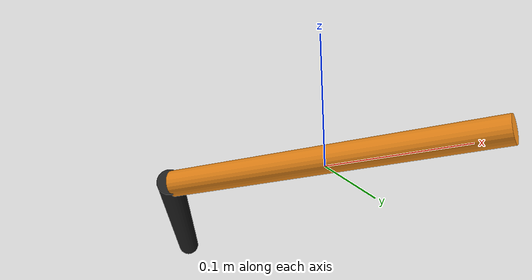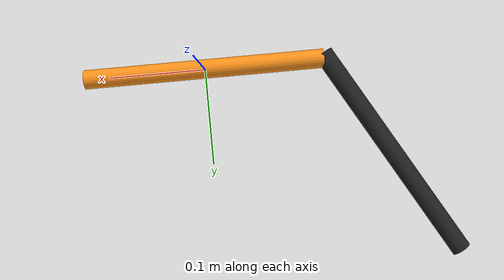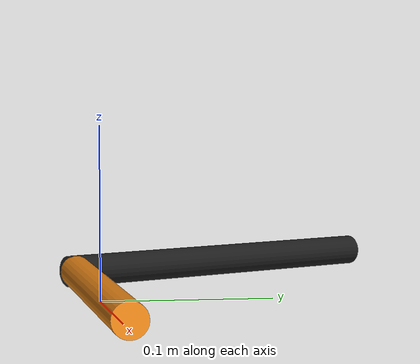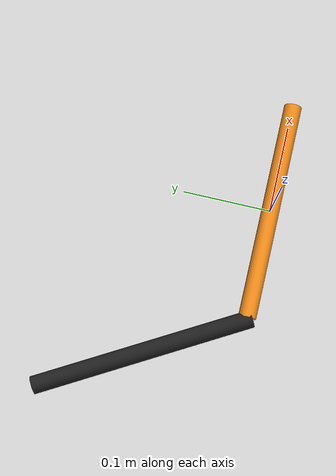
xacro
<?xml version="1.0"?>
<!-- Revolute-Revolute Manipulator -->
<robot name="fiver" xmlns:xacro="http://www.ros.org/wiki/xacro">

  <!-- Constants for robot dimensions -->
  <xacro:property name="PI" value="3.1415926535897931"/>
  <xacro:property name="mass" value="0.1" /> <!-- arbitrary value for mass -->

  <xacro:property name="height1" value="2" /> <!-- Link 1 -->
  <xacro:property name="height2" value="1" /> <!-- Link 2 -->
  <xacro:property name="height3" value="1" /> <!-- Link 2 -->
  <xacro:property name="camera_link" value="0.05" /> <!-- Size of square 'camera' box -->
  <xacro:property name="axel_offset" value="0.05" /> <!-- Space btw top of beam and the each joint -->
  <xacro:property name="width" value="0.01"/> <!-- Square dimensions (widthxwidth) of beams -->
  <xacro:property name="link1" value="0.250"/> <!-- Link 1 -->
  <xacro:property name="link2" value="0.250"/> <!-- Link 2 -->
  <xacro:property name="link3" value="0.250"/> <!-- Link 3 -->
  <xacro:property name="link4" value="0.250"/> <!-- Link 4 -->
  <xacro:property name="link5" value="0.200"/> <!-- Link 5 -->

  <!-- Import all Gazebo-customization elements, including Gazebo colors -->
  <xacro:include filename="$(find fiver_description)/urdf/fiver.gazebo" />
  <!-- Import Rviz colors -->
  <xacro:include filename="$(find fiver_description)/urdf/materials.xacro" />

  <!-- Used for fixing robot to Gazebo 'base_link' -->
  <link name="world"/>

  <joint name="fixed" type="fixed">
    <parent link="world"/>
    <child link="link1"/>
  </joint>

  <!-- Base Link -->
  <link name="link1">
    <collision>
      <origin xyz="0 0 ${width/2}" rpy="0 ${PI/2} 0"/>
      <geometry>
      <cylinder radius="${width}" length="${link1}"/>
      </geometry>
    </collision>

    <visual>
      <origin xyz="0 0 ${width/2}" rpy="0 ${PI/2} 0"/>
      <geometry>
      <cylinder radius="${width}" length="${link1}"/>
      </geometry>
      <material name="orange"/>
    </visual>

    <inertial>
      <origin xyz="0 0 ${width/2}" rpy="0 ${PI/2} 0"/>
      <mass value="10"/>
      <inertia
	  ixx="1.15" ixy="0.0" ixz="0.0"
	  iyy="1.15" iyz="0.0"
	  izz="1.15"/>
    </inertial>
  </link>

  <joint name="joint1" type="continuous">
    <parent link="link1"/>
    <child link="link2"/>
    <origin xyz="${-link1/2} ${-width/2} 0" rpy="0 0 ${PI/6}"/>
    <axis xyz="0 0 1"/>
    <dynamics damping="0.7"/>
  </joint>

  <!-- Middle Link -->
  <link name="link2">
    <collision>
      <origin xyz="0 ${link2/2}  ${width/2}" rpy="${PI/2} 0 0"/>
      <geometry>
      <cylinder radius="${width}" length="${link2}"/>
      </geometry>
      </collision>

    <visual>
       <origin xyz="0 ${link2/2}  ${width/2}" rpy="${PI/2} 0 0"/>
      <geometry>
      <cylinder radius="${width}" length="${link2}"/>
      </geometry>
      <material name="black"/>
    </visual>

    <inertial>
       <origin xyz="0 ${link2/2}  ${width/2}" rpy="${PI/2} 0 0"/>
      <mass value="${mass}"/>
      <inertia
	  ixx="0.15" ixy="0.0" ixz="0.0"
	  iyy="0.15" iyz="0.0"
	  izz="0.15"/>
    </inertial>
  </link>

</robot>
